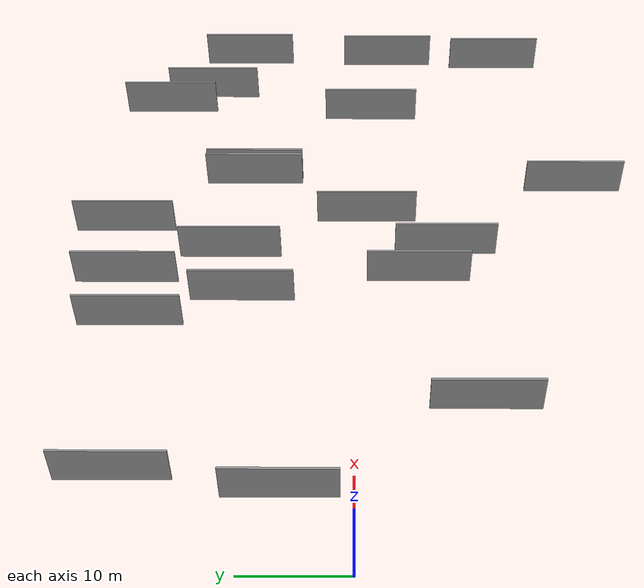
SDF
<sdf version="1.6">
 <world name="default">
  <scene>
   <sky><clouds><speed>12</speed></clouds></sky>
   <ambient>0.4 0.4 0.4 1</ambient>
   <background>0.7 0.7 0.7 1</background>
   <shadows>1</shadows>
  </scene>
  <gravity>0 0 -9.8066</gravity>
  <magnetic_field>6e-06 2.3e-05 -4.2e-05</magnetic_field>
  <physics default="0" name="default_physics" type="ode">
   <ode>
    <solver>
     <type>quick</type>
     <iters>10</iters>
     <sor>1.0</sor>
     <use_dynamic_moi_rescaling>0</use_dynamic_moi_rescaling>
    </solver>
    <constraints>
     <cfm>0</cfm>
     <erp>0.2</erp>
     <contact_max_correcting_vel>100</contact_max_correcting_vel>
     <contact_surface_layer>0.001</contact_surface_layer>
    </constraints>
   </ode>
   <max_step_size>0.004</max_step_size>
   <real_time_factor>1</real_time_factor>
   <real_time_update_rate>250</real_time_update_rate>
  </physics>
  <light name="sun" type="directional">
   <pose>0 0 10 0 0 0</pose>
   <diffuse>0.8 0.8 0.8 1</diffuse>
   <specular>0.2 0.2 0.2 1</specular>
   <attenuation>
    <range>1000</range>
    <constant>0.9</constant>
    <linear>0.01</linear>
    <quadratic>0.001</quadratic>
   </attenuation>
   <direction>-0.5 0.1 -0.9</direction>
  </light>
  <model name="grey_wall_1">
   <static>1</static>
   <pose>4.5108 6.1599 5.0 0.000000 0.000000 1.570796</pose>
   <link name="link">
    <pose>0 0 2.00 0 0 0</pose>
    <collision name="collision"><geometry><box><size>10.00 0.2 4.00</size></box></geometry></collision>
    <visual name="visual">
     <cast_shadows>0</cast_shadows>
     <geometry><box><size>10.00 0.2 4.00</size></box></geometry>
     <material>
      <script>
       <uri>model://grey_wall/materials/scripts</uri>
       <uri>model://grey_wall/materials/textures</uri>
       <name>vrc/grey_wall</name>
      </script>
     </material>
    </visual>
   </link>
  </model>
  <model name="grey_wall_2">
   <static>1</static>
   <pose>65.6627 12.2968 5.0 0.000000 0.000000 1.570796</pose>
   <link name="link">
    <pose>0 0 2.00 0 0 0</pose>
    <collision name="collision"><geometry><box><size>10.00 0.2 4.00</size></box></geometry></collision>
    <visual name="visual">
     <cast_shadows>0</cast_shadows>
     <geometry><box><size>10.00 0.2 4.00</size></box></geometry>
     <material>
      <script>
       <uri>model://grey_wall/materials/scripts</uri>
       <uri>model://grey_wall/materials/textures</uri>
       <name>vrc/grey_wall</name>
      </script>
     </material>
    </visual>
   </link>
  </model>
  <model name="grey_wall_3">
   <static>1</static>
   <pose>6.1972 20.2566 5.0 0.000000 0.000000 1.570796</pose>
   <link name="link">
    <pose>0 0 2.00 0 0 0</pose>
    <collision name="collision"><geometry><box><size>10.00 0.2 4.00</size></box></geometry></collision>
    <visual name="visual">
     <cast_shadows>0</cast_shadows>
     <geometry><box><size>10.00 0.2 4.00</size></box></geometry>
     <material>
      <script>
       <uri>model://grey_wall/materials/scripts</uri>
       <uri>model://grey_wall/materials/textures</uri>
       <name>vrc/grey_wall</name>
      </script>
     </material>
    </visual>
   </link>
  </model>
  <model name="grey_wall_4">
   <static>1</static>
   <pose>23.6302 21.1054 5.0 0.000000 0.000000 1.570796</pose>
   <link name="link">
    <pose>0 0 2.00 0 0 0</pose>
    <collision name="collision"><geometry><box><size>10.00 0.2 4.00</size></box></geometry></collision>
    <visual name="visual">
     <cast_shadows>0</cast_shadows>
     <geometry><box><size>10.00 0.2 4.00</size></box></geometry>
     <material>
      <script>
       <uri>model://grey_wall/materials/scripts</uri>
       <uri>model://grey_wall/materials/textures</uri>
       <name>vrc/grey_wall</name>
      </script>
     </material>
    </visual>
   </link>
  </model>
  <model name="grey_wall_5">
   <static>1</static>
   <pose>37.9588 -1.2039 5.0 0.000000 0.000000 1.570796</pose>
   <link name="link">
    <pose>0 0 2.00 0 0 0</pose>
    <collision name="collision"><geometry><box><size>10.00 0.2 4.00</size></box></geometry></collision>
    <visual name="visual">
     <cast_shadows>0</cast_shadows>
     <geometry><box><size>10.00 0.2 4.00</size></box></geometry>
     <material>
      <script>
       <uri>model://grey_wall/materials/scripts</uri>
       <uri>model://grey_wall/materials/textures</uri>
       <name>vrc/grey_wall</name>
      </script>
     </material>
    </visual>
   </link>
  </model>
  <model name="grey_wall_6">
   <static>1</static>
   <pose>33.2714 -8.9843 5.0 0.000000 0.000000 1.570796</pose>
   <link name="link">
    <pose>0 0 2.00 0 0 0</pose>
    <collision name="collision"><geometry><box><size>10.00 0.2 4.00</size></box></geometry></collision>
    <visual name="visual">
     <cast_shadows>0</cast_shadows>
     <geometry><box><size>10.00 0.2 4.00</size></box></geometry>
     <material>
      <script>
       <uri>model://grey_wall/materials/scripts</uri>
       <uri>model://grey_wall/materials/textures</uri>
       <name>vrc/grey_wall</name>
      </script>
     </material>
    </visual>
   </link>
  </model>
  <model name="grey_wall_7">
   <static>1</static>
   <pose>29.4451 -6.1803 5.0 0.000000 0.000000 1.570796</pose>
   <link name="link">
    <pose>0 0 2.00 0 0 0</pose>
    <collision name="collision"><geometry><box><size>10.00 0.2 4.00</size></box></geometry></collision>
    <visual name="visual">
     <cast_shadows>0</cast_shadows>
     <geometry><box><size>10.00 0.2 4.00</size></box></geometry>
     <material>
      <script>
       <uri>model://grey_wall/materials/scripts</uri>
       <uri>model://grey_wall/materials/textures</uri>
       <name>vrc/grey_wall</name>
      </script>
     </material>
    </visual>
   </link>
  </model>
  <model name="grey_wall_8">
   <static>1</static>
   <pose>42.6785 -22.7746 5.0 0.000000 0.000000 1.570796</pose>
   <link name="link">
    <pose>0 0 2.00 0 0 0</pose>
    <collision name="collision"><geometry><box><size>10.00 0.2 4.00</size></box></geometry></collision>
    <visual name="visual">
     <cast_shadows>0</cast_shadows>
     <geometry><box><size>10.00 0.2 4.00</size></box></geometry>
     <material>
      <script>
       <uri>model://grey_wall/materials/scripts</uri>
       <uri>model://grey_wall/materials/textures</uri>
       <name>vrc/grey_wall</name>
      </script>
     </material>
    </visual>
   </link>
  </model>
  <model name="grey_wall_9">
   <static>1</static>
   <pose>29.3124 22.1550 5.0 0.000000 0.000000 1.570796</pose>
   <link name="link">
    <pose>0 0 2.00 0 0 0</pose>
    <collision name="collision"><geometry><box><size>10.00 0.2 4.00</size></box></geometry></collision>
    <visual name="visual">
     <cast_shadows>0</cast_shadows>
     <geometry><box><size>10.00 0.2 4.00</size></box></geometry>
     <material>
      <script>
       <uri>model://grey_wall/materials/scripts</uri>
       <uri>model://grey_wall/materials/textures</uri>
       <name>vrc/grey_wall</name>
      </script>
     </material>
    </visual>
   </link>
  </model>
  <model name="grey_wall_10">
   <static>1</static>
   <pose>36.5385 23.1392 5.0 0.000000 0.000000 1.570796</pose>
   <link name="link">
    <pose>0 0 2.00 0 0 0</pose>
    <collision name="collision"><geometry><box><size>10.00 0.2 4.00</size></box></geometry></collision>
    <visual name="visual">
     <cast_shadows>0</cast_shadows>
     <geometry><box><size>10.00 0.2 4.00</size></box></geometry>
     <material>
      <script>
       <uri>model://grey_wall/materials/scripts</uri>
       <uri>model://grey_wall/materials/textures</uri>
       <name>vrc/grey_wall</name>
      </script>
     </material>
    </visual>
   </link>
  </model>
  <model name="grey_wall_11">
   <static>1</static>
   <pose>13.7471 -11.5779 5.0 0.000000 0.000000 1.570796</pose>
   <link name="link">
    <pose>0 0 2.00 0 0 0</pose>
    <collision name="collision"><geometry><box><size>10.00 0.2 4.00</size></box></geometry></collision>
    <visual name="visual">
     <cast_shadows>0</cast_shadows>
     <geometry><box><size>10.00 0.2 4.00</size></box></geometry>
     <material>
      <script>
       <uri>model://grey_wall/materials/scripts</uri>
       <uri>model://grey_wall/materials/textures</uri>
       <name>vrc/grey_wall</name>
      </script>
     </material>
    </visual>
   </link>
  </model>
  <model name="grey_wall_12">
   <static>1</static>
   <pose>59.0430 16.0390 5.0 0.000000 0.000000 1.570796</pose>
   <link name="link">
    <pose>0 0 2.00 0 0 0</pose>
    <collision name="collision"><geometry><box><size>10.00 0.2 4.00</size></box></geometry></collision>
    <visual name="visual">
     <cast_shadows>0</cast_shadows>
     <geometry><box><size>10.00 0.2 4.00</size></box></geometry>
     <material>
      <script>
       <uri>model://grey_wall/materials/scripts</uri>
       <uri>model://grey_wall/materials/textures</uri>
       <name>vrc/grey_wall</name>
      </script>
     </material>
    </visual>
   </link>
  </model>
  <model name="grey_wall_13">
   <static>1</static>
   <pose>64.8110 -16.1368 5.0 0.000000 0.000000 1.570796</pose>
   <link name="link">
    <pose>0 0 2.00 0 0 0</pose>
    <collision name="collision"><geometry><box><size>10.00 0.2 4.00</size></box></geometry></collision>
    <visual name="visual">
     <cast_shadows>0</cast_shadows>
     <geometry><box><size>10.00 0.2 4.00</size></box></geometry>
     <material>
      <script>
       <uri>model://grey_wall/materials/scripts</uri>
       <uri>model://grey_wall/materials/textures</uri>
       <name>vrc/grey_wall</name>
      </script>
     </material>
    </visual>
   </link>
  </model>
  <model name="grey_wall_14">
   <static>1</static>
   <pose>26.8636 10.7643 5.0 0.000000 0.000000 1.570796</pose>
   <link name="link">
    <pose>0 0 2.00 0 0 0</pose>
    <collision name="collision"><geometry><box><size>10.00 0.2 4.00</size></box></geometry></collision>
    <visual name="visual">
     <cast_shadows>0</cast_shadows>
     <geometry><box><size>10.00 0.2 4.00</size></box></geometry>
     <material>
      <script>
       <uri>model://grey_wall/materials/scripts</uri>
       <uri>model://grey_wall/materials/textures</uri>
       <name>vrc/grey_wall</name>
      </script>
     </material>
    </visual>
   </link>
  </model>
  <model name="grey_wall_15">
   <static>1</static>
   <pose>65.3887 -3.7700 5.0 0.000000 0.000000 1.570796</pose>
   <link name="link">
    <pose>0 0 2.00 0 0 0</pose>
    <collision name="collision"><geometry><box><size>10.00 0.2 4.00</size></box></geometry></collision>
    <visual name="visual">
     <cast_shadows>0</cast_shadows>
     <geometry><box><size>10.00 0.2 4.00</size></box></geometry>
     <material>
      <script>
       <uri>model://grey_wall/materials/scripts</uri>
       <uri>model://grey_wall/materials/textures</uri>
       <name>vrc/grey_wall</name>
      </script>
     </material>
    </visual>
   </link>
  </model>
  <model name="grey_wall_16">
   <static>1</static>
   <pose>43.8613 10.5154 5.0 0.000000 0.000000 1.570796</pose>
   <link name="link">
    <pose>0 0 2.00 0 0 0</pose>
    <collision name="collision"><geometry><box><size>10.00 0.2 4.00</size></box></geometry></collision>
    <visual name="visual">
     <cast_shadows>0</cast_shadows>
     <geometry><box><size>10.00 0.2 4.00</size></box></geometry>
     <material>
      <script>
       <uri>model://grey_wall/materials/scripts</uri>
       <uri>model://grey_wall/materials/textures</uri>
       <name>vrc/grey_wall</name>
      </script>
     </material>
    </visual>
   </link>
  </model>
  <model name="grey_wall_17">
   <static>1</static>
   <pose>56.2537 20.5272 5.0 0.000000 0.000000 1.570796</pose>
   <link name="link">
    <pose>0 0 2.00 0 0 0</pose>
    <collision name="collision"><geometry><box><size>10.00 0.2 4.00</size></box></geometry></collision>
    <visual name="visual">
     <cast_shadows>0</cast_shadows>
     <geometry><box><size>10.00 0.2 4.00</size></box></geometry>
     <material>
      <script>
       <uri>model://grey_wall/materials/scripts</uri>
       <uri>model://grey_wall/materials/textures</uri>
       <name>vrc/grey_wall</name>
      </script>
     </material>
    </visual>
   </link>
  </model>
  <model name="grey_wall_18">
   <static>1</static>
   <pose>32.8180 12.2855 5.0 0.000000 0.000000 1.570796</pose>
   <link name="link">
    <pose>0 0 2.00 0 0 0</pose>
    <collision name="collision"><geometry><box><size>10.00 0.2 4.00</size></box></geometry></collision>
    <visual name="visual">
     <cast_shadows>0</cast_shadows>
     <geometry><box><size>10.00 0.2 4.00</size></box></geometry>
     <material>
      <script>
       <uri>model://grey_wall/materials/scripts</uri>
       <uri>model://grey_wall/materials/textures</uri>
       <name>vrc/grey_wall</name>
      </script>
     </material>
    </visual>
   </link>
  </model>
  <model name="grey_wall_19">
   <static>1</static>
   <pose>54.9544 -1.7592 5.0 0.000000 0.000000 1.570796</pose>
   <link name="link">
    <pose>0 0 2.00 0 0 0</pose>
    <collision name="collision"><geometry><box><size>10.00 0.2 4.00</size></box></geometry></collision>
    <visual name="visual">
     <cast_shadows>0</cast_shadows>
     <geometry><box><size>10.00 0.2 4.00</size></box></geometry>
     <material>
      <script>
       <uri>model://grey_wall/materials/scripts</uri>
       <uri>model://grey_wall/materials/textures</uri>
       <name>vrc/grey_wall</name>
      </script>
     </material>
    </visual>
   </link>
  </model>
  <model name="grey_wall_20">
   <static>1</static>
   <pose>44.6171 10.4896 5.0 0.000000 0.000000 1.570796</pose>
   <link name="link">
    <pose>0 0 2.00 0 0 0</pose>
    <collision name="collision"><geometry><box><size>10.00 0.2 4.00</size></box></geometry></collision>
    <visual name="visual">
     <cast_shadows>0</cast_shadows>
     <geometry><box><size>10.00 0.2 4.00</size></box></geometry>
     <material>
      <script>
       <uri>model://grey_wall/materials/scripts</uri>
       <uri>model://grey_wall/materials/textures</uri>
       <name>vrc/grey_wall</name>
      </script>
     </material>
    </visual>
   </link>
  </model>
 </world>
</sdf>
